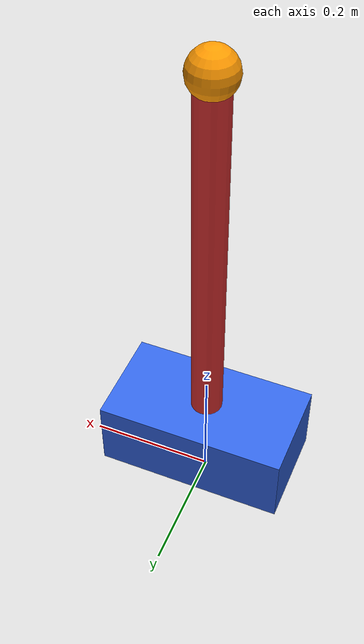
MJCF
<mujoco model="cartpole_balance">

    <option timestep="0.005"
            gravity="0 0 -9.81"
            integrator="RK4"/>

    <visual>
        <global fovy="45" linewidth="2"/>
        <quality shadowsize="2048"/>
        <map stiffness="700" shadowscale="0.5"/>
    </visual>

    <worldbody>

        <!-- Ground -->

        <!-- Rail / Track indicator -->

        <!-- Cart body (slides along X) -->
        <body name="cart" pos="0 0 0.1">

            <!-- Slide joint – cart can move ±2 m along X -->
            <joint name="cart_slide"
                   type="slide"
                   axis="1 0 0"
                   limited="true"
                   range="-2 2"
                   damping="0"/>

            <!-- Cart geometry -->
            <geom type="box"
                  size="0.15 0.08 0.06"
                  rgba="0.2 0.4 0.9 1"
                  mass="1.0"/>

            <!-- Wheel decorations (visual only) -->

            <!-- Pole mounted on top of cart -->
            <body name="pole" pos="0 0 0.06">

                <!-- Hinge joint (rotates in XZ plane, axis Y) -->
                <joint name="pole_hinge"
                       type="hinge"
                       axis="0 1 0"
                       range="-1.5708 1.5708"
                       damping="0"/>

                <!-- Pole geometry – extends upward -->
                <geom type="capsule"
                      fromto="0 0 0  0 0 0.6"
                      size="0.025"
                      rgba="0.9 0.2 0.2 1"
                      mass="0.25"/>

                <!-- Bob at tip for visual clarity -->
                <geom type="sphere"
                      pos="0 0 0.6"
                      size="0.035"
                      rgba="1.0 0.6 0.0 1"
                      mass="0"/>

            </body>

        </body>

    </worldbody>

    <actuator>
        <!-- Force on cart slide only (no direct torque on pole) -->
        <motor joint="cart_slide"
               ctrlrange="-25 25"
               gear="1"
               name="cart_force"/>
    </actuator>

    <!-- Default camera for a clean side view -->
    <visual>
        <headlight diffuse="0.6 0.6 0.6" ambient="0.3 0.3 0.3" specular="0.1 0.1 0.1"/>
    </visual>

    <keyframe>
    <key
        time="0"
        qpos="0 -0.251328"
        qvel="0 0"
        ctrl="0"
    />
    </keyframe>

</mujoco>
